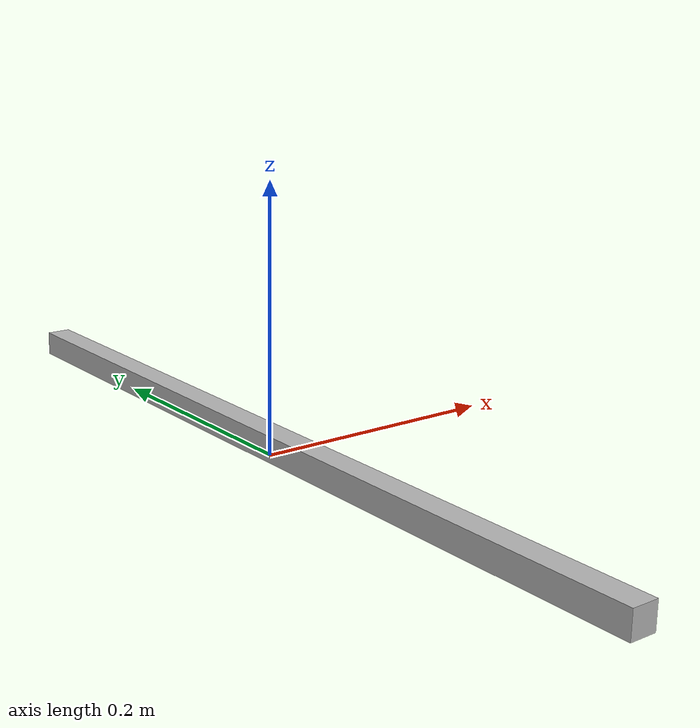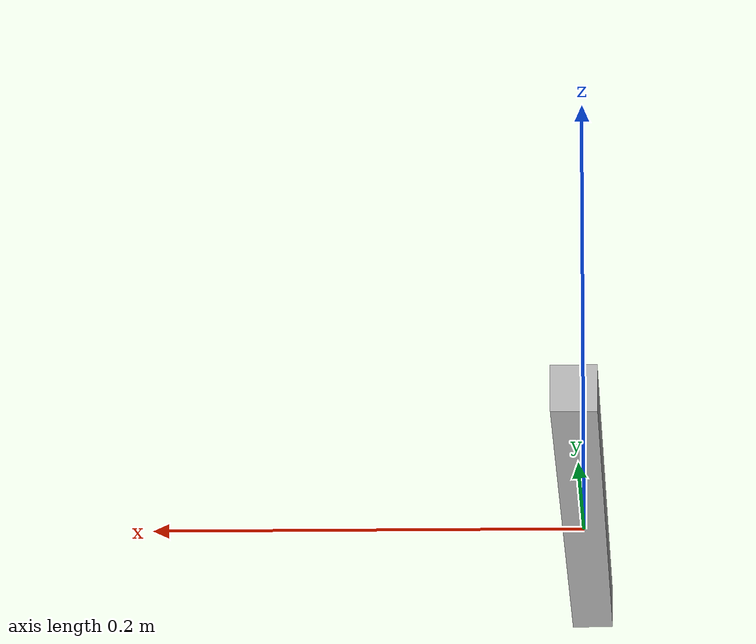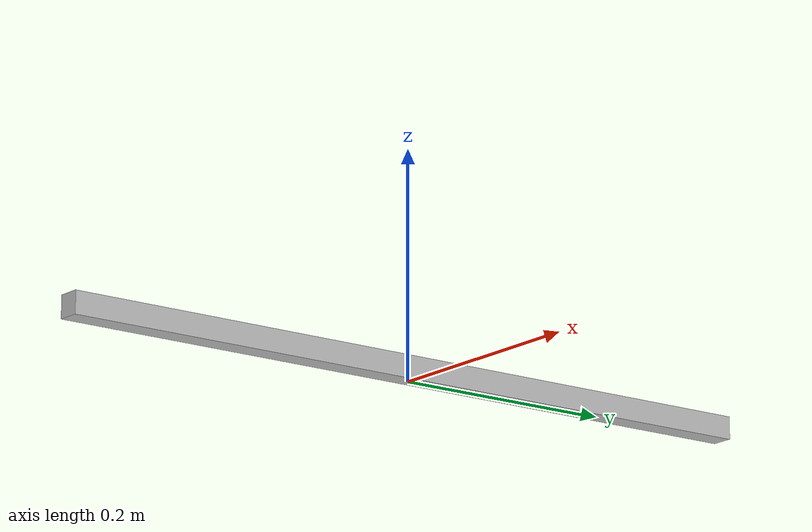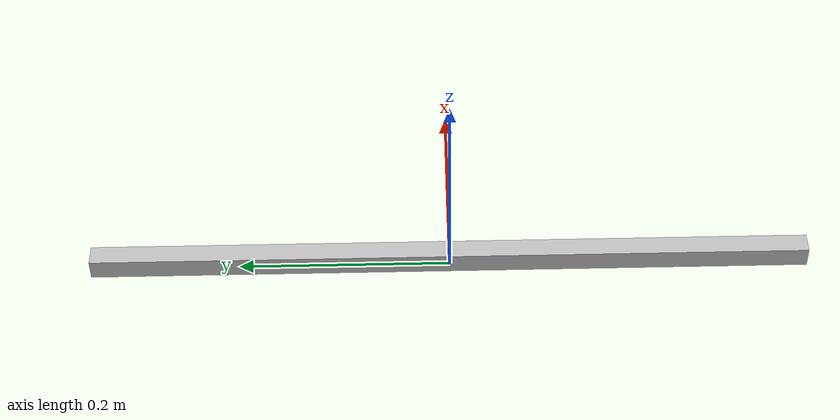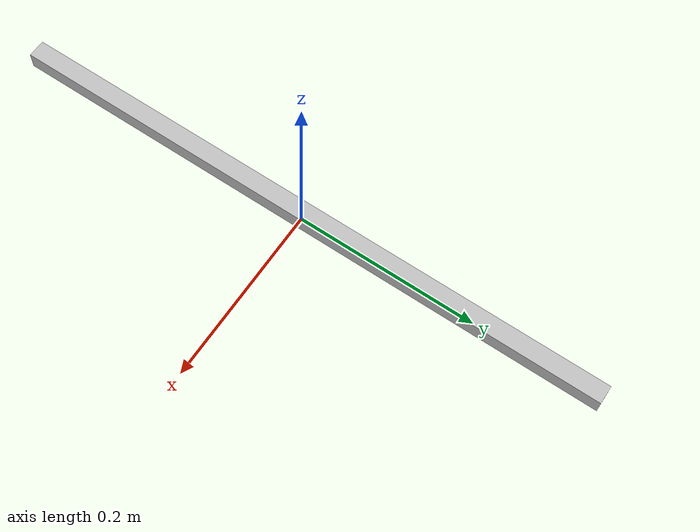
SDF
<?xml version="1.0" ?>
<sdf version="1.4">
  <model name="front_bar">
    <link name="link">
      <pose>0 0 0 0 0 0</pose>
      <collision name="collision">
        <geometry>
          <mesh>
            <uri>model://front_bar/meshes/front_bar.stl</uri>
            <scale>0.00999 0.00999 0.00999</scale>
          </mesh>
        </geometry>
      </collision>
      <visual name="visual">
        <geometry>
          <mesh>
            <uri>model://front_bar/meshes/front_bar.stl</uri>
            <scale>0.00999 0.00999 0.00999</scale>
          </mesh>
        </geometry>
      </visual>
    </link>
  </model>
</sdf>
